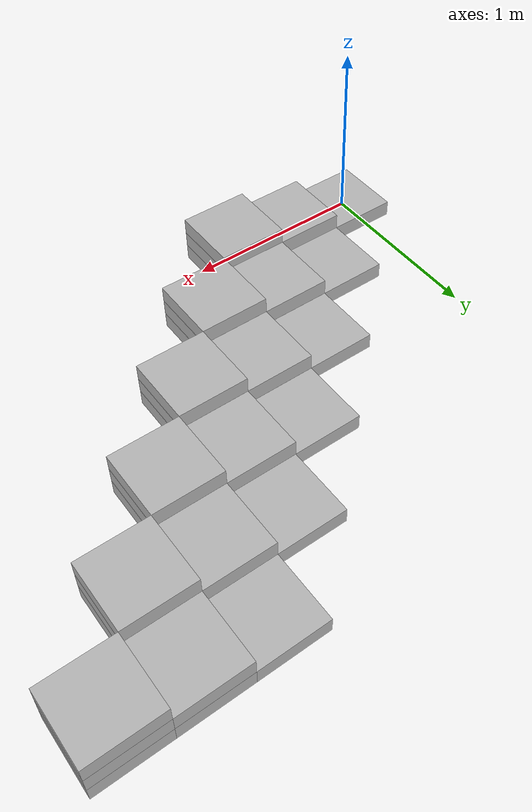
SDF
<?xml version="1.0" ?>
<sdf version="1.4">

  <model name="block_level_steps">
    <pose>0 0 0 0 0 0</pose>

          <include>
            <name>block_0_0_0</name>
            <pose> 0.0 0.0 0.0 0 0 1.570796 </pose>
            <uri>model://cinder_block_wide</uri>
          </include>

          <include>
            <name>block_0_1_1</name>
            <pose> 0.387353556 0.0 0.093 0 0 1.570796 </pose>
            <uri>model://cinder_block_wide</uri>
          </include>

          <include>
            <name>block_0_1_0</name>
            <pose> 0.387353556 0.0 0.0 0 0 1.570796 </pose>
            <uri>model://cinder_block_wide</uri>
          </include>

          <include>
            <name>block_0_2_2</name>
            <pose> 0.774707112 0.0 0.186 0 0 1.570796 </pose>
            <uri>model://cinder_block_wide</uri>
          </include>

          <include>
            <name>block_0_2_1</name>
            <pose> 0.774707112 0.0 0.093 0 0 1.570796 </pose>
            <uri>model://cinder_block_wide</uri>
          </include>

          <include>
            <name>block_0_2_0</name>
            <pose> 0.774707112 0.0 0.0 0 0 1.570796 </pose>
            <uri>model://cinder_block_wide</uri>
          </include>

          <include>
            <name>block_1_0_0</name>
            <pose> 0.387353556 0.387353556 0.0 0 0 1.570796 </pose>
            <uri>model://cinder_block_wide</uri>
          </include>

          <include>
            <name>block_1_1_1</name>
            <pose> 0.774707112 0.387353556 0.093 0 0 1.570796 </pose>
            <uri>model://cinder_block_wide</uri>
          </include>

          <include>
            <name>block_1_1_0</name>
            <pose> 0.774707112 0.387353556 0.0 0 0 1.570796 </pose>
            <uri>model://cinder_block_wide</uri>
          </include>

          <include>
            <name>block_1_2_2</name>
            <pose> 1.162060668 0.387353556 0.186 0 0 1.570796 </pose>
            <uri>model://cinder_block_wide</uri>
          </include>

          <include>
            <name>block_1_2_1</name>
            <pose> 1.162060668 0.387353556 0.093 0 0 1.570796 </pose>
            <uri>model://cinder_block_wide</uri>
          </include>

          <include>
            <name>block_1_2_0</name>
            <pose> 1.162060668 0.387353556 0.0 0 0 1.570796 </pose>
            <uri>model://cinder_block_wide</uri>
          </include>

          <include>
            <name>block_2_0_0</name>
            <pose> 0.774707112 0.774707112 0.0 0 0 1.570796 </pose>
            <uri>model://cinder_block_wide</uri>
          </include>

          <include>
            <name>block_2_1_1</name>
            <pose> 1.162060668 0.774707112 0.093 0 0 1.570796 </pose>
            <uri>model://cinder_block_wide</uri>
          </include>

          <include>
            <name>block_2_1_0</name>
            <pose> 1.162060668 0.774707112 0.0 0 0 1.570796 </pose>
            <uri>model://cinder_block_wide</uri>
          </include>

          <include>
            <name>block_2_2_2</name>
            <pose> 1.549414224 0.774707112 0.186 0 0 1.570796 </pose>
            <uri>model://cinder_block_wide</uri>
          </include>

          <include>
            <name>block_2_2_1</name>
            <pose> 1.549414224 0.774707112 0.093 0 0 1.570796 </pose>
            <uri>model://cinder_block_wide</uri>
          </include>

          <include>
            <name>block_2_2_0</name>
            <pose> 1.549414224 0.774707112 0.0 0 0 1.570796 </pose>
            <uri>model://cinder_block_wide</uri>
          </include>

          <include>
            <name>block_3_0_0</name>
            <pose> 1.162060668 1.162060668 0.0 0 0 1.570796 </pose>
            <uri>model://cinder_block_wide</uri>
          </include>

          <include>
            <name>block_3_1_1</name>
            <pose> 1.549414224 1.162060668 0.093 0 0 1.570796 </pose>
            <uri>model://cinder_block_wide</uri>
          </include>

          <include>
            <name>block_3_1_0</name>
            <pose> 1.549414224 1.162060668 0.0 0 0 1.570796 </pose>
            <uri>model://cinder_block_wide</uri>
          </include>

          <include>
            <name>block_3_2_2</name>
            <pose> 1.93676778 1.162060668 0.186 0 0 1.570796 </pose>
            <uri>model://cinder_block_wide</uri>
          </include>

          <include>
            <name>block_3_2_1</name>
            <pose> 1.93676778 1.162060668 0.093 0 0 1.570796 </pose>
            <uri>model://cinder_block_wide</uri>
          </include>

          <include>
            <name>block_3_2_0</name>
            <pose> 1.93676778 1.162060668 0.0 0 0 1.570796 </pose>
            <uri>model://cinder_block_wide</uri>
          </include>

          <include>
            <name>block_4_0_0</name>
            <pose> 1.549414224 1.549414224 0.0 0 0 1.570796 </pose>
            <uri>model://cinder_block_wide</uri>
          </include>

          <include>
            <name>block_4_1_1</name>
            <pose> 1.9367677799999998 1.549414224 0.093 0 0 1.570796 </pose>
            <uri>model://cinder_block_wide</uri>
          </include>

          <include>
            <name>block_4_1_0</name>
            <pose> 1.9367677799999998 1.549414224 0.0 0 0 1.570796 </pose>
            <uri>model://cinder_block_wide</uri>
          </include>

          <include>
            <name>block_4_2_2</name>
            <pose> 2.324121336 1.549414224 0.186 0 0 1.570796 </pose>
            <uri>model://cinder_block_wide</uri>
          </include>

          <include>
            <name>block_4_2_1</name>
            <pose> 2.324121336 1.549414224 0.093 0 0 1.570796 </pose>
            <uri>model://cinder_block_wide</uri>
          </include>

          <include>
            <name>block_4_2_0</name>
            <pose> 2.324121336 1.549414224 0.0 0 0 1.570796 </pose>
            <uri>model://cinder_block_wide</uri>
          </include>

          <include>
            <name>block_5_0_0</name>
            <pose> 1.9367677799999998 1.9367677799999998 0.0 0 0 1.570796 </pose>
            <uri>model://cinder_block_wide</uri>
          </include>

          <include>
            <name>block_5_1_1</name>
            <pose> 2.3241213359999997 1.9367677799999998 0.093 0 0 1.570796 </pose>
            <uri>model://cinder_block_wide</uri>
          </include>

          <include>
            <name>block_5_1_0</name>
            <pose> 2.3241213359999997 1.9367677799999998 0.0 0 0 1.570796 </pose>
            <uri>model://cinder_block_wide</uri>
          </include>

          <include>
            <name>block_5_2_2</name>
            <pose> 2.711474892 1.9367677799999998 0.186 0 0 1.570796 </pose>
            <uri>model://cinder_block_wide</uri>
          </include>

          <include>
            <name>block_5_2_1</name>
            <pose> 2.711474892 1.9367677799999998 0.093 0 0 1.570796 </pose>
            <uri>model://cinder_block_wide</uri>
          </include>

          <include>
            <name>block_5_2_0</name>
            <pose> 2.711474892 1.9367677799999998 0.0 0 0 1.570796 </pose>
            <uri>model://cinder_block_wide</uri>
          </include>

  </model>

</sdf>

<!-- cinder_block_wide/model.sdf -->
<sdf version="1.5">
  <model name="cinder_block_wide">
    <link name="link">
      <inertial>
        <pose>0 0 0.0714375 0 0 0</pose>
        <mass>5</mass>
        <!-- approximate as uniform box 0.387 x 0.387 x 0.092 m -->
        <inertia>
          <ixx>0.06814656666666667</ixx>
          <ixy>0.0000</ixy>
          <iyy>0.06814656666666667</iyy>
          <ixz>0.0000</ixz>
          <iyz>0.0000</iyz>
          <izz>0.1248075</izz>
        </inertia>
      </inertial>
      <visual name="visual">
        <geometry>

          <box>
            <size>0.387353556 0.387353556 0.092075</size>
          </box>
        </geometry>
      </visual>

      <collision name="block_collision">
       <pose>0 0 0 0 0 0</pose>
        <geometry>
          <box>
            <size>0.387353556 0.387353556 0.092075</size>
          </box>
        </geometry>
        <surface>
          <contact>
            <ode>
              <max_vel>0.1</max_vel>
              <min_depth>0.001</min_depth>
            </ode>
          </contact>
          <friction>
            <ode>
              <mu>1.0</mu>
              <mu2>1.0</mu2>
            </ode>
          </friction>
        </surface>

      </collision>

    </link>
  </model>
</sdf>
